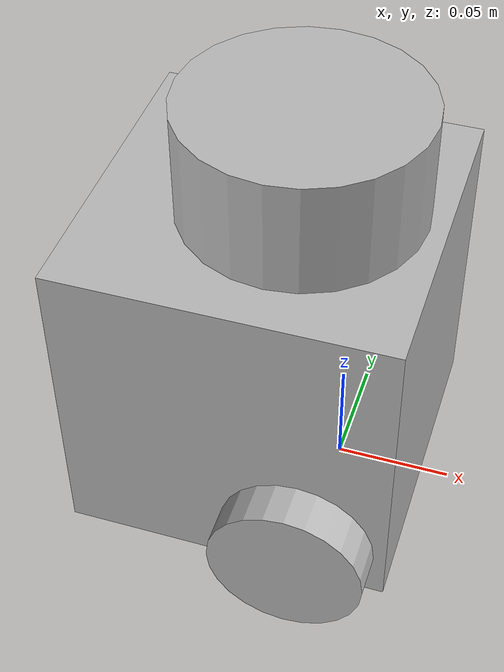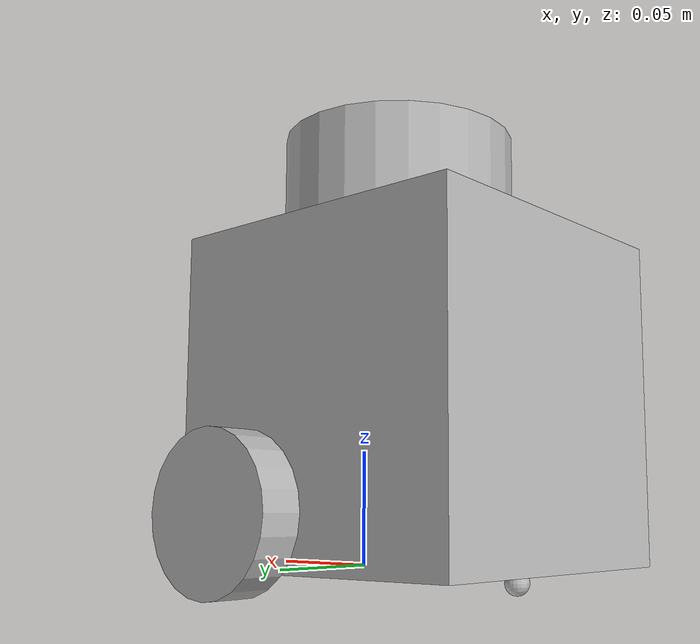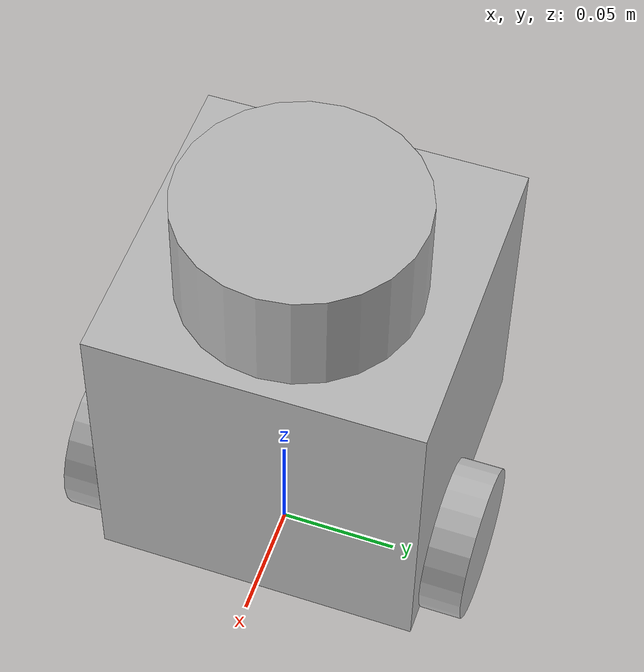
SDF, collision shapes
<?xml version="1.0" ?>
<sdf version="1.4">
  <model name="turtlebot3_burger">

    <link name="base">

      <inertial>
        <pose>-0.032 0 0.070 0 0 0</pose>
        <inertia>
          <ixx>0.00717896</ixx>
          <ixy>-1.22941e-05</ixy>
          <ixz>0.00057674</ixz>
          <iyy>0.00721804</iyy>
          <iyz>-5.01209e-06</iyz>
          <izz>0.00413858</izz>
        </inertia>
        <mass>1.0</mass>
      </inertial>

      <collision name="base_collision">
        <pose>-0.032 0 0.070 0 0 0</pose>
        <geometry>
          <box>
            <size>0.140 0.140 0.140</size>
          </box>
        </geometry>
      </collision>

      <visual name="base_visual">
        <pose>-0.032 0 0 0 0 0</pose>
        <geometry>
          <mesh>
            <uri>model://turtlebot3_common_meshes/burger_base.dae</uri>
            <scale>0.001 0.001 0.001</scale>
          </mesh>
        </geometry>
      </visual>

      <collision name="caster_collision">
        <pose>-0.081 0 -0.004 0 0 0</pose>
        <geometry>
          <sphere>
            <radius>0.005000</radius>
          </sphere>
        </geometry>
        <surface>
          <friction>
            <ode>
              <mu>100000.0</mu>
              <mu2>100000.0</mu2>
              <fdir1>0 0 0</fdir1>
              <slip1>0</slip1>
              <slip2>0</slip2>
            </ode>
          </friction>
        </surface>
      </collision>
    </link>

  <link name= "cube">

    <inertial>
      <mass>0.0001</mass>
      <inertia>
        <ixx>0.166667</ixx>
        <ixy>0</ixy>
        <ixz>0</ixz>
        <iyy>0.166667</iyy>
        <iyz>0</iyz>
        <izz>0.166667</izz>
      </inertia>
    </inertial>

       <collision name="cube_collision">
        <pose>-0.032 0 0.070 0 0 0</pose>
        <geometry>
          <box>
            <size>0.140 0.140 0.140</size>
          </box>
        </geometry>
      </collision>

    <visual name='cube_visual'>
    <pose>-0.03533 0.002014 0.732871 1.5e-05 -0.007706 -5.2e-05</pose>
    <geometry>
      <mesh>
        <uri>model://custom_turtle/meshes/arucocube.dae</uri>
        <scale>2.5 2.5 2.5</scale>
      </mesh>
    </geometry>

    <material>
          <lighting>1</lighting>
          <script>
            <uri>model://custom_turtle/materials/scripts</uri>
            <uri>model://custom_turtle/materials/textures</uri>
            <name>arucocube</name>
          </script>
            <shader type='vertex'>
            <normal_map>__default__</normal_map>
          </shader>
          <ambient>1 1 1 1</ambient>
          <diffuse>1 1 1 1</diffuse>
          <specular>0 0 0 1</specular>
          <emissive>0 0 0 1</emissive>
    </material>

    <transparency>0</transparency>
    <cast_shadows>1</cast_shadows>
    </visual>

  </link>
  <link name="lidar">
    <inertial>
      <pose>-0.020 0 0.161 0 0 0</pose>
      <inertia>
        <ixx>0.001</ixx>
        <ixy>0.000</ixy>
        <ixz>0.000</ixz>
        <iyy>0.001</iyy>
        <iyz>0.000</iyz>
        <izz>0.001</izz>
      </inertia>
      <mass>0.125</mass>
    </inertial>

    <collision name="lidar_sensor_collision">
        <pose>-0.020 0 0.161 0 0 0</pose>
        <geometry>
          <cylinder>
            <radius>0.0508</radius>
            <length>0.055</length>
          </cylinder>
        </geometry>
      </collision>

      <visual name="lidar_sensor_visual">
        <pose>-0.032 0 0.171 0 0 0</pose>
        <geometry>
          <mesh>
            <uri>model://turtlebot3_common_meshes/lds.dae</uri>
            <scale>0.001 0.001 0.001</scale>
          </mesh>
        </geometry>
      </visual>

      <sensor name="hls_lfcd_lds" type="ray">
        <always_on>1</always_on>
        <visualize>0</visualize>
        <pose>-0.032 0 0.171 0 0 0</pose>
        <update_rate>1800</update_rate>
        <ray>
          <scan>
            <horizontal>
              <samples>360</samples>
              <resolution>1.000000</resolution>
              <min_angle>0.000000</min_angle>
              <max_angle>6.280000</max_angle>
            </horizontal>
          </scan>
          <range>
            <min>0.120000</min>
            <max>3.5</max>
            <resolution>0.015000</resolution>
          </range>
          <noise>
            <type>gaussian</type>
            <mean>0.0</mean>
            <stddev>0.01</stddev>
          </noise>
        </ray>
      </sensor>
    </link>

    <link name="left_wheel">

      <inertial>
        <pose>0 0.08 0.023 -1.57 0 0</pose>
        <inertia>
          <ixx>0.001</ixx>
          <ixy>0.000</ixy>
          <ixz>0.000</ixz>
          <iyy>0.001</iyy>
          <iyz>0.000</iyz>
          <izz>0.001</izz>
        </inertia>
        <mass>0.1</mass>
      </inertial>

      <collision name="left_wheel_collision">
        <pose>0 0.08 0.023 -1.57 0 0</pose>
        <geometry>
          <cylinder>
            <radius>0.033</radius>
            <length>0.018</length>
          </cylinder>
        </geometry>
          <surface>
          <!-- This friction pamareter don't contain reliable data!! -->
            <friction>
              <ode>
                <mu>100000.0</mu>
                <mu2>100000.0</mu2>
                <fdir1>0 0 0</fdir1>
                <slip1>0.0</slip1>
                <slip2>0.0</slip2>
              </ode>
          </friction>
        </surface>
      </collision>

      <visual name="left_wheel_visual">
        <pose>0 0.08 0.023 0 0 0</pose>
        <geometry>
          <mesh>
            <uri>model://turtlebot3_common_meshes/tire.dae</uri>
            <scale>0.001 0.001 0.001</scale>
          </mesh>
        </geometry>
      </visual>
    </link>

    <link name="right_wheel">

      <inertial>
        <pose>0.0 -0.08 0.023 -1.57 0 0</pose>
        <inertia>
          <ixx>0.001</ixx>
          <ixy>0.000</ixy>
          <ixz>0.000</ixz>
          <iyy>0.001</iyy>
          <iyz>0.000</iyz>
          <izz>0.001</izz>
        </inertia>
        <mass>0.1</mass>
      </inertial>

      <collision name="right_wheel_collision">
        <pose>0.0 -0.08 0.023 -1.57 0 0</pose>
        <geometry>
          <cylinder>
            <radius>0.033</radius>
            <length>0.018</length>
          </cylinder>
        </geometry>
          <surface>
          <!-- This friction pamareter don't contain reliable data!! -->
            <friction>
              <ode>
                <mu>100000.0</mu>
                <mu2>100000.0</mu2>
                <fdir1>0 0 0</fdir1>
                <slip1>0.0</slip1>
                <slip2>0.0</slip2>
              </ode>
          </friction>
        </surface>
      </collision>

      <visual name="right_wheel_visual">
        <pose>0.0 -0.08 0.023 0 0 0</pose>
        <geometry>
          <mesh>
            <uri>model://turtlebot3_common_meshes/tire.dae</uri>
            <scale>0.001 0.001 0.001</scale>
          </mesh>
        </geometry>
      </visual>
    </link>

    <joint name="left_wheel_joint" type="revolute">
      <parent>base</parent>
      <child>left_wheel</child>
      <pose>0.0 0.08 0.023 -1.57 0 0</pose>
      <axis>
        <xyz>0 1 0</xyz>
      </axis>
    </joint>

    <joint name='base_footprint_JOINT_0' type='fixed'>
      <parent>base</parent>
      <child>cube</child>
      <pose>0 0 0 0 -0 0</pose>
      <axis>
        <xyz>0 0 1</xyz>
        <use_parent_model_frame>true</use_parent_model_frame>
      </axis>
    </joint>

    <joint name="right_wheel_joint" type="revolute">
      <parent>base</parent>
      <child>right_wheel</child>
      <pose>0.0 -0.08 0.023 -1.57 0 0</pose>
      <axis>
        <xyz>0 1 0</xyz>
      </axis>
    </joint>

    <joint name="lidar_joint" type="fixed">
      <parent>base</parent>
      <child>lidar</child>
      <pose>-0.032 0 0.171 0 0 0</pose>
      <axis>
        <xyz>0 0 1</xyz>
        <use_parent_model_frame>true</use_parent_model_frame>
      </axis>
    </joint>
    <plugin name="differential_drive_controller"     filename="libgazebo_ros_diff_drive.so">
    <alwaysOn>true</alwaysOn>
    <updateRate>30</updateRate>
    <leftJoint>left_wheel_joint</leftJoint>
    <!-- matching your left joint name -->
    <rightJoint>right_wheel_joint</rightJoint>
    <!-- matching your right joint name -->
    <wheelSeparation>0.5380</wheelSeparation>
    <wheelDiameter>0.2410</wheelDiameter>
    <torque>20</torque>
    <commandTopic>cmd_vel</commandTopic>
    <!-- topic name published in the cpp file -->
    <odometryTopic>odom</odometryTopic>
    <odometryFrame>odom</odometryFrame>
    <robotBaseFrame>base</robotBaseFrame>
    <publishTf>1</publishTf>
    <publishWheelJointState>1</publishWheelJointState>
  </plugin>
  </model>
</sdf>
